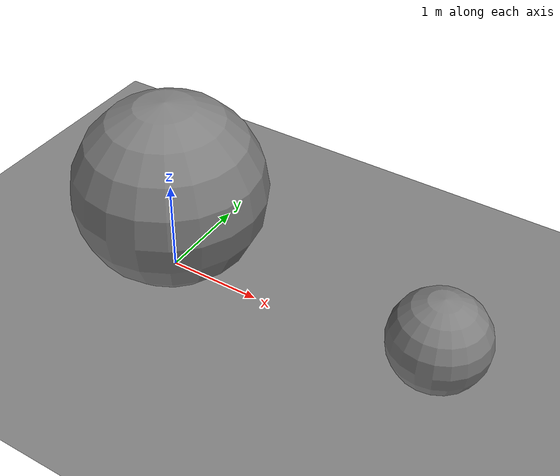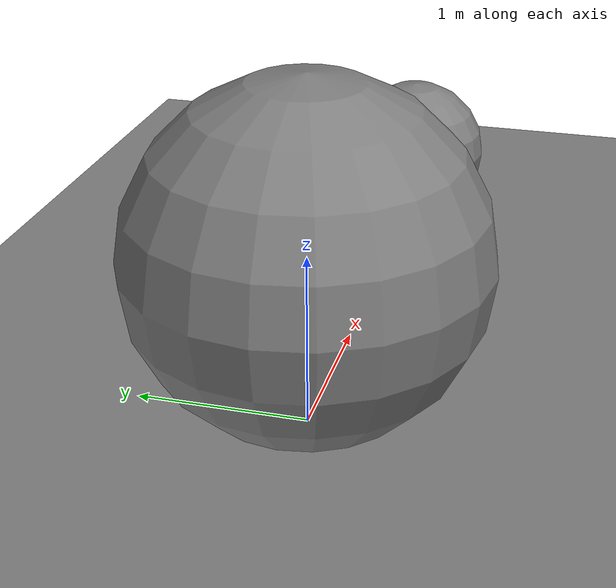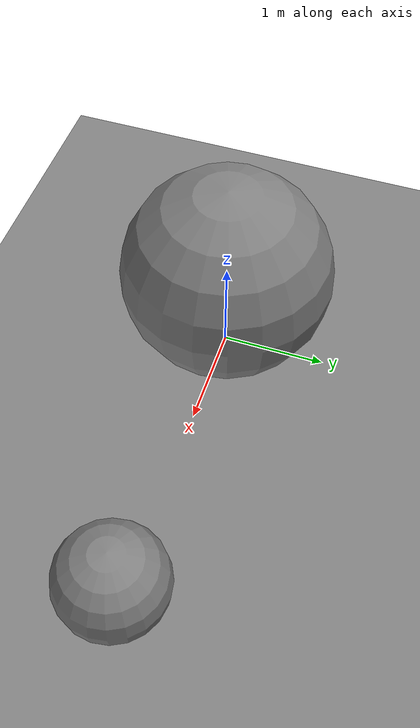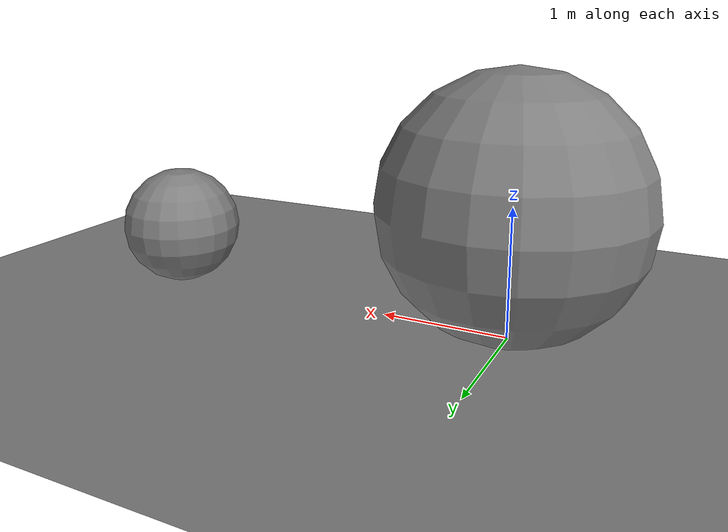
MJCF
<mujoco>
  <option gravity="0 0 -9.81" timestep="0.002"/>
  <worldbody>
    <geom name="floor" type="plane" size="5 5 0.1"/>
    <body name="b1" pos="0 0 1.0">
      <joint type="free"/>
      <geom type="sphere" size="1.0" density="1000"/>
    </body>
    <body name="b2" pos="3 0 0.5">
      <joint type="free"/>
      <geom type="sphere" size="0.5" density="1000"/>
    </body>
  </worldbody>
</mujoco>
